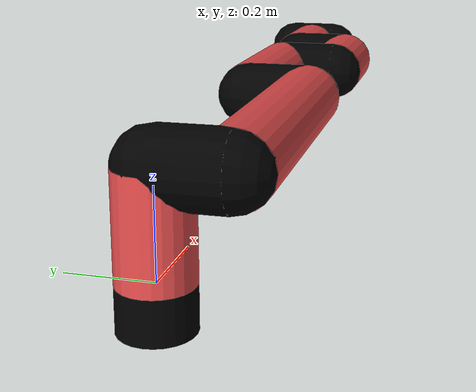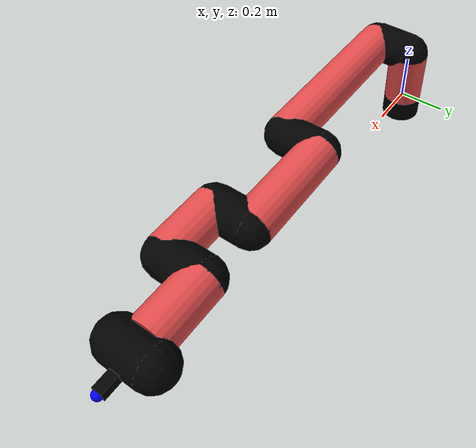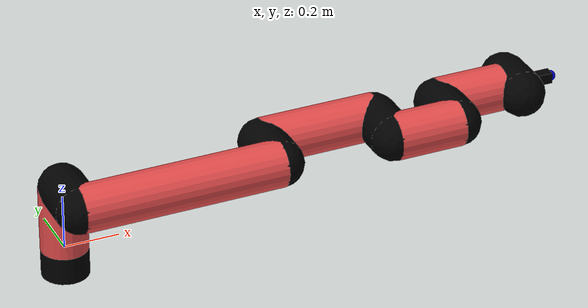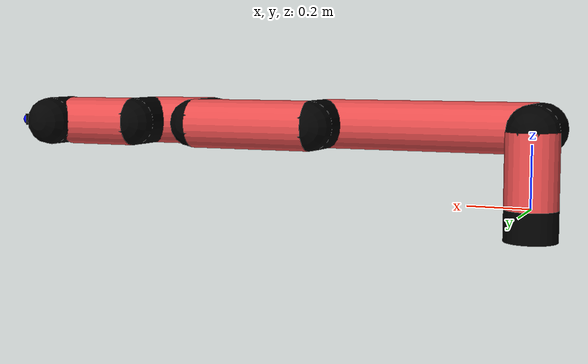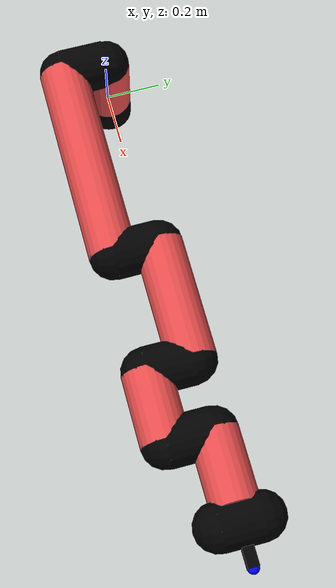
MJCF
<mujoco model="manipulator">
		<compiler angle="degree" coordinate="local" inertiafromgeom="auto" meshdir="meshes/"/>
		<option gravity="0 0 0" integrator="RK4" iterations="30" timestep="0.01"/>

		<default>
		<joint armature="1" limited="true" stiffness="10" damping="15" frictionloss="5.0"/>
		<geom conaffinity="1" condim="3" contype="1" friction=".5 .1 .1" margin="0.002"/>
		<motor ctrllimited="true"/>
		<position ctrllimited="true"/>
		</default>

		<asset>
		<texture builtin="gradient" height="100" rgb1="1.0 1.0 1.0" rgb2="1.0 1.0 1.0" type="skybox" width="100"/>
		<texture builtin="flat" height="32" name="arm_tex" rgb1="0.9 0.3 0.3" type="2d" width="32"/>
		<texture builtin="flat" height="32" name="gripper_tex" rgb1="0.0 0.0 0.0" type="cube" width="32"/>

		<material name="arm_mat" shininess="0.1" specular="0.1" texture="arm_tex"/>
		<material name="gripper_mat" shininess="1" specular="1" texture="gripper_tex"/>
		</asset>

		<worldbody>
		<light cutoff="45" diffuse=".8 .8 .8" dir="0 0.16 -1" directional="false" name="light" pos="0 -2.0 8.0" specular="0.3 0.3 0.3"/>

		<body name="base_link" pos="0 0 -0.1">
		<geom fromto="0 0 0 0 0 0.1" material="arm_mat" name="base_link" rgba="0.0 0.0 0.0 1" size="0.085" type="cylinder"/>
		</body>

		<body name="l1" pos="0 0 0">
<geom fromto="0 0 0 0 0 0.24" material="arm_mat" name="l1" rgba="0.9 0.3 0.3 1" size="0.085" type="cylinder"/>
<geom fromto="0 0 0.24 0 -0.16 0.24" material="arm_mat" name="l1_ex" rgba="0.0 0.0 0.0 1" size="0.085" type="capsule"/>
<joint axis="0 0 1" name="j1" pos="0 0 0" range="-90 90" damping="22.39" frictionloss="5.81"/>

<body name="l2" pos="0 -0.16 0.24">
<geom fromto="0 0 0 0.74 0 0" material="arm_mat" name="l2" rgba="0.9 0.3 0.3 1" size="0.085" type="cylinder"/>
<geom fromto="0.74 0 0 0.74 0.16 0" material="arm_mat" name="l2_ex" rgba="0.0 0.0 0.0 1" size="0.085" type="capsule"/>
<joint axis="0.0 1.0 0.0" name="j2" pos="0 0 0" range="-90 60" damping="28.44" frictionloss="11.52"/>

<body name="l3" pos="0.74 0.16 0">
<geom fromto="0 0 0 0.43 0 0" material="arm_mat" name="l3" rgba="0.9 0.3 0.3 1" size="0.085" type="cylinder"/>
<geom fromto="0.43 0 0 0.43 -0.16 0" material="arm_mat" name="l3_ex" rgba="0.0 0.0 0.0 1" size="0.085" type="capsule"/>
<joint axis="0.0 1.0 0.0" name="j3" pos="0 0 0" range="-30 60" damping="26.71" frictionloss="8.07"/>

<body name="l4" pos="0.43 -0.16 0">
<geom fromto="0 0 0 0.25 0 0" material="arm_mat" name="l4" rgba="0.9 0.3 0.3 1" size="0.085" type="cylinder"/>
<geom fromto="0.25 0 0 0.25 0.16 0" material="arm_mat" name="l4_ex" rgba="0.0 0.0 0.0 1" size="0.085" type="capsule"/>
<joint axis="0.0 1.0 0.0" name="j4" pos="0 0 0" range="-30 60" damping="40.41" frictionloss="13.94"/>

<body name="l5" pos="0.25 0.16 0">
<geom fromto="0 0 0 0.25 0 0" material="arm_mat" name="l5" rgba="0.9 0.3 0.3 1" size="0.085" type="cylinder"/>
<joint axis="0.0 1.0 0.0" name="j5" pos="0 0 0" range="-30 60" damping="31.33" frictionloss="10.79"/>

<body name="gripper" pos="0.25 0 0">
<geom fromto="0.05 -0.07 0 0.05 0.07 0" material="gripper_mat" name="gripper" rgba="0.0 0.0 0.0 1" size="0.085" type="capsule"/><joint axis="1 0 0" name="j6" pos="0 0 0" range="-90 90" damping="15" frictionloss="5.0"/><body name="finger" pos="0.1 0 0">
<geom fromto="0 0.0 0 0.1 0.0 0" material="gripper_mat" name="finger" rgba="0.0 0.0 0.0 1" size="0.020 0.06 0.06" type="box"/>
</body>
<site name="current" pos="0.2 0. 0.0" rgba="0. 0. 1.0 1" size="0.02" type="sphere"/>
</body>
</body>
</body>
</body>
</body>
</body>
</worldbody>
<actuator>
<motor ctrllimited="true" ctrlrange="-1.0 1.0" joint="j1" gear="62.46"/>
<motor ctrllimited="true" ctrlrange="-1.0 1.0" joint="j2" gear="91.48"/>
<motor ctrllimited="true" ctrlrange="-1.0 1.0" joint="j3" gear="66.18"/>
<motor ctrllimited="true" ctrlrange="-1.0 1.0" joint="j4" gear="64.22"/>
<motor ctrllimited="true" ctrlrange="-1.0 1.0" joint="j5" gear="87.68"/>
<motor ctrllimited="true" ctrlrange="-1.0 1.0" joint="j6" gear="80"/>
</actuator>
</mujoco>
